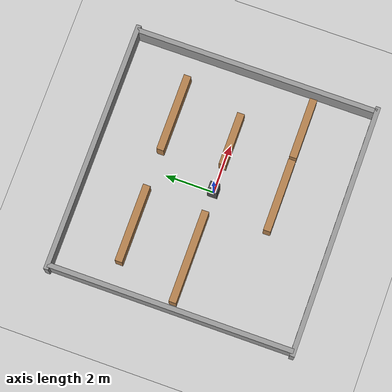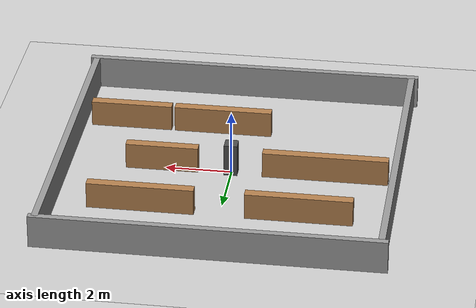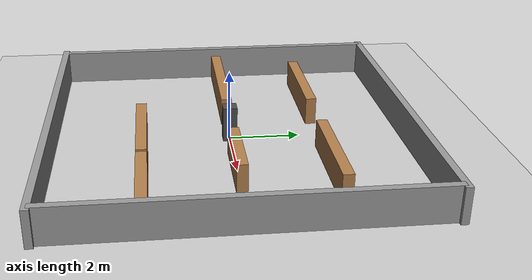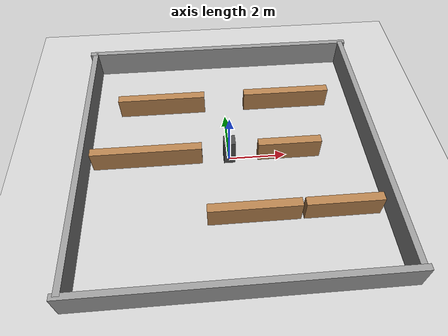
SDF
<sdf version="1.6">
 <world name="warehouse">
  <light name="sun" type="directional">
   <pose>0 0 10 0 -0 0</pose>
   <diffuse>0.8 0.8 0.8 1</diffuse>
   <specular>0.1 0.1 0.1 1</specular>
   <attenuation>
    <range>1000</range>
    <constant>0.9</constant>
    <linear>0.01</linear>
    <quadratic>0.001</quadratic>
   </attenuation>
   <direction>-0.5 0.5 -1</direction>
  </light>
  <model name="ground_plane">
   <static>1</static>
   <link name="link">
    <collision name="collision">
     <geometry><plane><normal>0 0 1</normal><size>100 100</size></plane></geometry>
     <surface><friction><ode><mu>100</mu><mu2>50</mu2></ode></friction></surface>
    </collision>
    <visual name="visual">
     <cast_shadows>0</cast_shadows>
     <geometry><plane><normal>0 0 1</normal><size>100 100</size></plane></geometry>
     <material>
      <script><uri>file://media/materials/scripts/gazebo.material</uri><name>Gazebo/Grey</name></script>
     </material>
    </visual>
   </link>
  </model>
  <gravity>0 0 -9.8</gravity>
  <physics name="default_physics" default="0" type="ode">
   <max_step_size>0.001</max_step_size>
   <real_time_factor>1</real_time_factor>
   <real_time_update_rate>1000</real_time_update_rate>
  </physics>
  <scene><ambient>0.4 0.4 0.4 1</ambient><background>0.7 0.7 0.7 1</background><shadows>1</shadows></scene>
  <model name="warehouse_walls">
   <static>1</static>
   <link name="wall_north">
    <pose>0 5.0 0 0 0 0</pose>
    <collision name="col">
     <pose>0 0 0.5 0 0 0</pose>
     <geometry><box><size>10.4 0.2 1.0</size></box></geometry>
    </collision>
    <visual name="vis">
     <pose>0 0 0.5 0 0 0</pose>
     <geometry><box><size>10.4 0.2 1.0</size></box></geometry>
     <material>
      <script><uri>file://media/materials/scripts/gazebo.material</uri><name>Gazebo/Grey</name></script>
     </material>
    </visual>
   </link>
   <link name="wall_south">
    <pose>0 -5.0 0 0 0 0</pose>
    <collision name="col">
     <pose>0 0 0.5 0 0 0</pose>
     <geometry><box><size>10.4 0.2 1.0</size></box></geometry>
    </collision>
    <visual name="vis">
     <pose>0 0 0.5 0 0 0</pose>
     <geometry><box><size>10.4 0.2 1.0</size></box></geometry>
     <material>
      <script><uri>file://media/materials/scripts/gazebo.material</uri><name>Gazebo/Grey</name></script>
     </material>
    </visual>
   </link>
   <link name="wall_east">
    <pose>5.0 0 0 0 0 0</pose>
    <collision name="col">
     <pose>0 0 0.5 0 0 0</pose>
     <geometry><box><size>0.2 10.0 1.0</size></box></geometry>
    </collision>
    <visual name="vis">
     <pose>0 0 0.5 0 0 0</pose>
     <geometry><box><size>0.2 10.0 1.0</size></box></geometry>
     <material>
      <script><uri>file://media/materials/scripts/gazebo.material</uri><name>Gazebo/Grey</name></script>
     </material>
    </visual>
   </link>
   <link name="wall_west">
    <pose>-5.0 0 0 0 0 0</pose>
    <collision name="col">
     <pose>0 0 0.5 0 0 0</pose>
     <geometry><box><size>0.2 10.0 1.0</size></box></geometry>
    </collision>
    <visual name="vis">
     <pose>0 0 0.5 0 0 0</pose>
     <geometry><box><size>0.2 10.0 1.0</size></box></geometry>
     <material>
      <script><uri>file://media/materials/scripts/gazebo.material</uri><name>Gazebo/Grey</name></script>
     </material>
    </visual>
   </link>
  </model>
  <model name="shelf_1a">
   <static>1</static>
   <pose>-2.35 2.5 0 0 0 0</pose>
   <link name="link">
    <collision name="col">
     <pose>0 0 0.4 0 0 0</pose>
     <geometry><box><size>3.2 0.3 0.8</size></box></geometry>
    </collision>
    <visual name="vis">
     <pose>0 0 0.4 0 0 0</pose>
     <geometry><box><size>3.2 0.3 0.8</size></box></geometry>
     <material>
      <script><uri>file://media/materials/scripts/gazebo.material</uri><name>Gazebo/WoodFloor</name></script>
     </material>
    </visual>
   </link>
  </model>
  <model name="shelf_1b">
   <static>1</static>
   <pose>2.35 2.5 0 0 0 0</pose>
   <link name="link">
    <collision name="col">
     <pose>0 0 0.4 0 0 0</pose>
     <geometry><box><size>3.2 0.3 0.8</size></box></geometry>
    </collision>
    <visual name="vis">
     <pose>0 0 0.4 0 0 0</pose>
     <geometry><box><size>3.2 0.3 0.8</size></box></geometry>
     <material>
      <script><uri>file://media/materials/scripts/gazebo.material</uri><name>Gazebo/WoodFloor</name></script>
     </material>
    </visual>
   </link>
  </model>
  <model name="shelf_2a">
   <static>1</static>
   <pose>-2.85 0.0 0 0 0 0</pose>
   <link name="link">
    <collision name="col">
     <pose>0 0 0.4 0 0 0</pose>
     <geometry><box><size>3.8 0.3 0.8</size></box></geometry>
    </collision>
    <visual name="vis">
     <pose>0 0 0.4 0 0 0</pose>
     <geometry><box><size>3.8 0.3 0.8</size></box></geometry>
     <material>
      <script><uri>file://media/materials/scripts/gazebo.material</uri><name>Gazebo/WoodFloor</name></script>
     </material>
    </visual>
   </link>
  </model>
  <model name="shelf_2b">
   <static>1</static>
   <pose>2.1 0.0 0 0 0 0</pose>
   <link name="link">
    <collision name="col">
     <pose>0 0 0.4 0 0 0</pose>
     <geometry><box><size>2.2 0.3 0.8</size></box></geometry>
    </collision>
    <visual name="vis">
     <pose>0 0 0.4 0 0 0</pose>
     <geometry><box><size>2.2 0.3 0.8</size></box></geometry>
     <material>
      <script><uri>file://media/materials/scripts/gazebo.material</uri><name>Gazebo/WoodFloor</name></script>
     </material>
    </visual>
   </link>
  </model>
  <model name="shelf_3a">
   <static>1</static>
   <pose>0.6 -2.5 0 0 0 0</pose>
   <link name="link">
    <collision name="col">
     <pose>0 0 0.4 0 0 0</pose>
     <geometry><box><size>3.0 0.3 0.8</size></box></geometry>
    </collision>
    <visual name="vis">
     <pose>0 0 0.4 0 0 0</pose>
     <geometry><box><size>3.0 0.3 0.8</size></box></geometry>
     <material>
      <script><uri>file://media/materials/scripts/gazebo.material</uri><name>Gazebo/WoodFloor</name></script>
     </material>
    </visual>
   </link>
  </model>
  <model name="shelf_3b">
   <static>1</static>
   <pose>3.45 -2.5 0 0 0 0</pose>
   <link name="link">
    <collision name="col">
     <pose>0 0 0.4 0 0 0</pose>
     <geometry><box><size>2.5 0.3 0.8</size></box></geometry>
    </collision>
    <visual name="vis">
     <pose>0 0 0.4 0 0 0</pose>
     <geometry><box><size>2.5 0.3 0.8</size></box></geometry>
     <material>
      <script><uri>file://media/materials/scripts/gazebo.material</uri><name>Gazebo/WoodFloor</name></script>
     </material>
    </visual>
   </link>
  </model>
  <model name="centre_pillar">
   <static>1</static>
   <link name="link">
    <collision name="col">
     <pose>0 0 0.5 0 0 0</pose>
     <geometry><box><size>0.4 0.4 1.0</size></box></geometry>
    </collision>
    <visual name="vis">
     <pose>0 0 0.5 0 0 0</pose>
     <geometry><box><size>0.4 0.4 1.0</size></box></geometry>
     <material>
      <script><uri>file://media/materials/scripts/gazebo.material</uri><name>Gazebo/DarkGrey</name></script>
     </material>
    </visual>
   </link>
  </model>
 </world>
</sdf>
